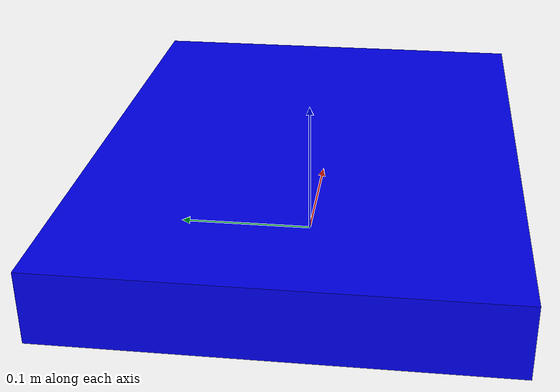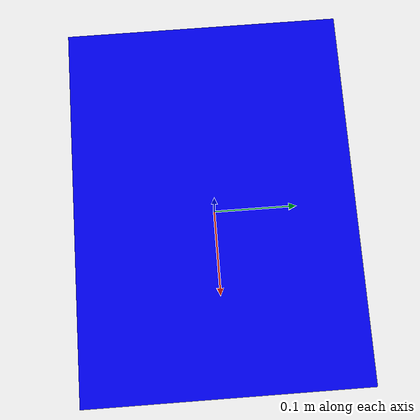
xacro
<?xml version="1.0"?>
<robot xmlns:xacro="http://www.ros.org/wiki/xacro" name="k_FWD_Robot">

  <xacro:include filename="$(find k_FWD_Robot_description)/urdf/base/base_link.gazebo.xacro"/>

  <link name="base_link">
        <inertial>
          <origin xyz="0.0 0.0 0.0" rpy="0.0 0.0 0.0"/>
          <mass value="5.0"/>
          <inertia ixx="0.0" ixy="0.0" ixz="0.0" iyy="0.0" iyz="0.0" izz="0.0"/>
        </inertial>
        <visual name="">
          <origin xyz="0.0 0.0 0.05" rpy="0.0 0.0 0.0"/>
          <geometry>
            <box size="0.4 0.3 0.05"/>
          </geometry>
          <material name="base_link_material">
            <color rgba="0.0 0.0 1.0 1.0"/>
            <texture filename=""/>
          </material>
        </visual>
        <collision>
          <origin xyz="0.0 0.0 0.05" rpy="0.0 0.0 0.0"/>
          <geometry>
            <box size="0.4 0.3 0.05"/>
          </geometry>
        </collision>
  </link>

</robot>
